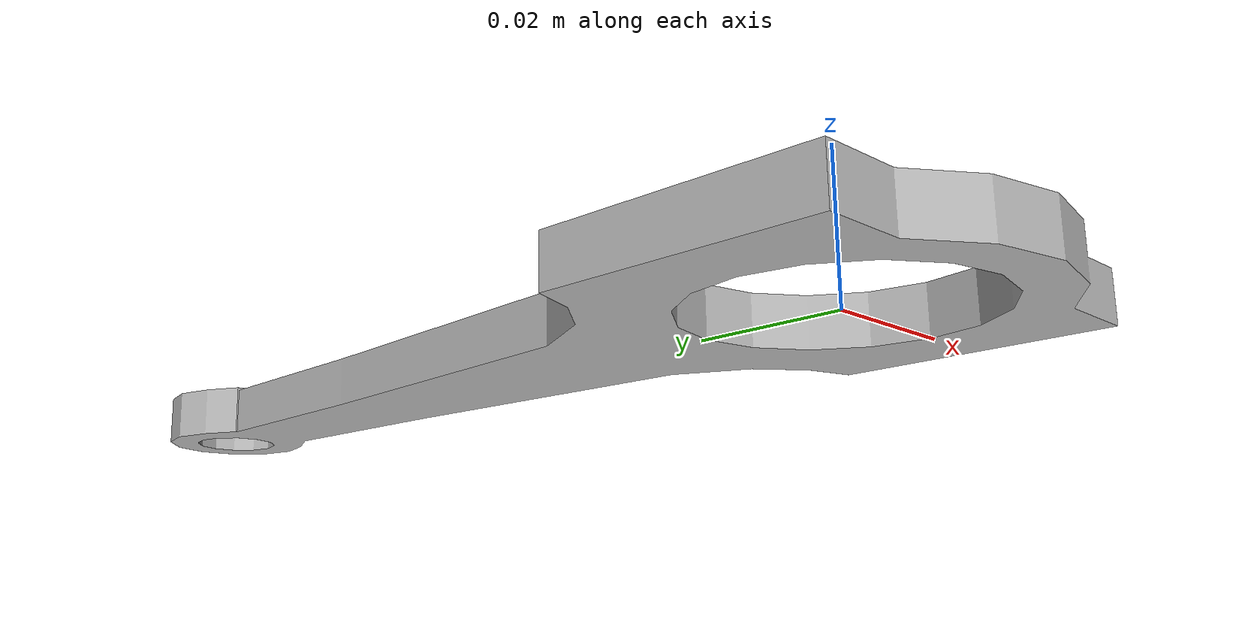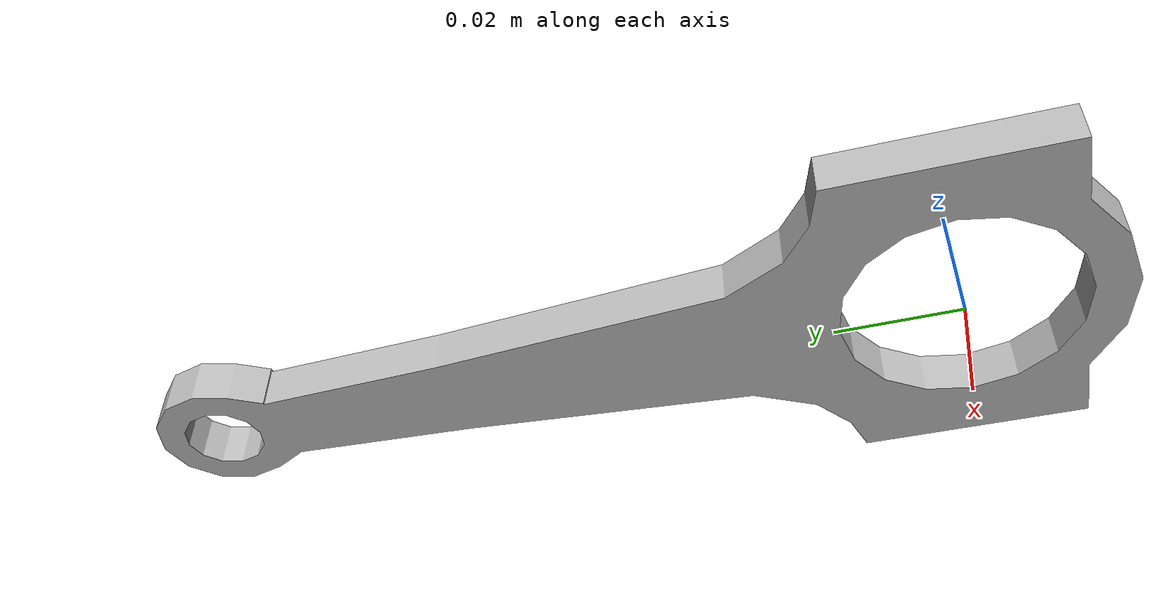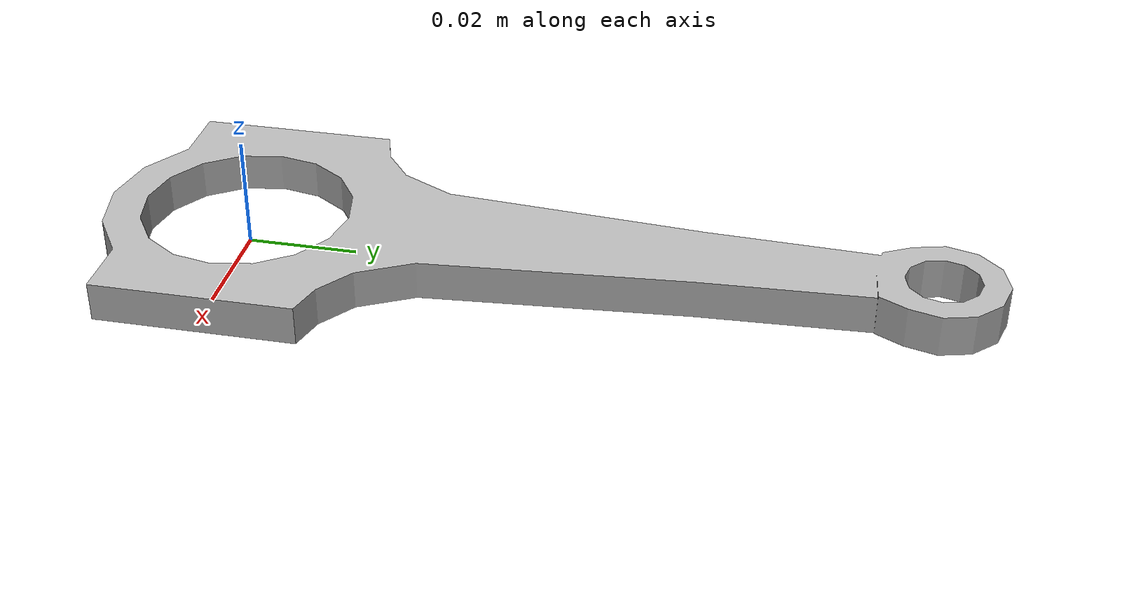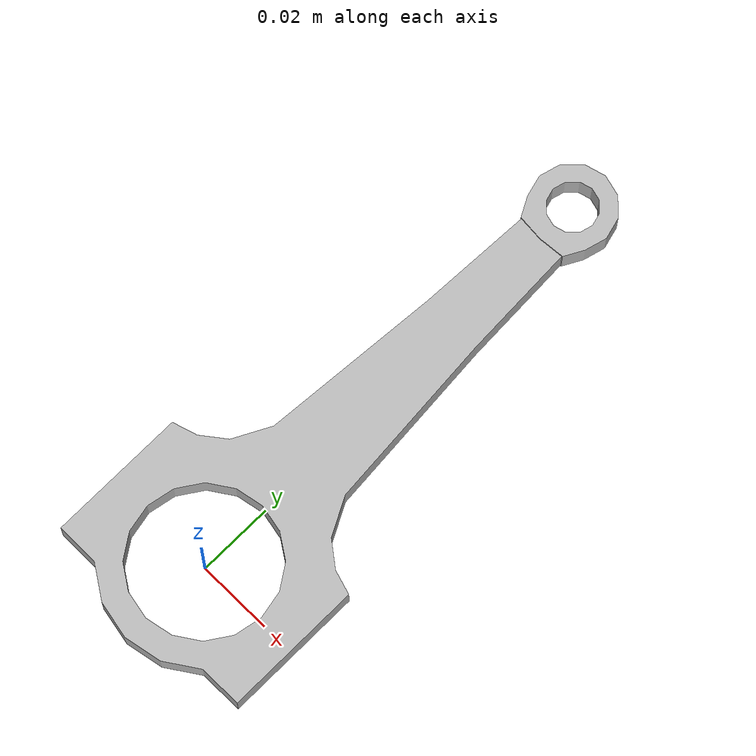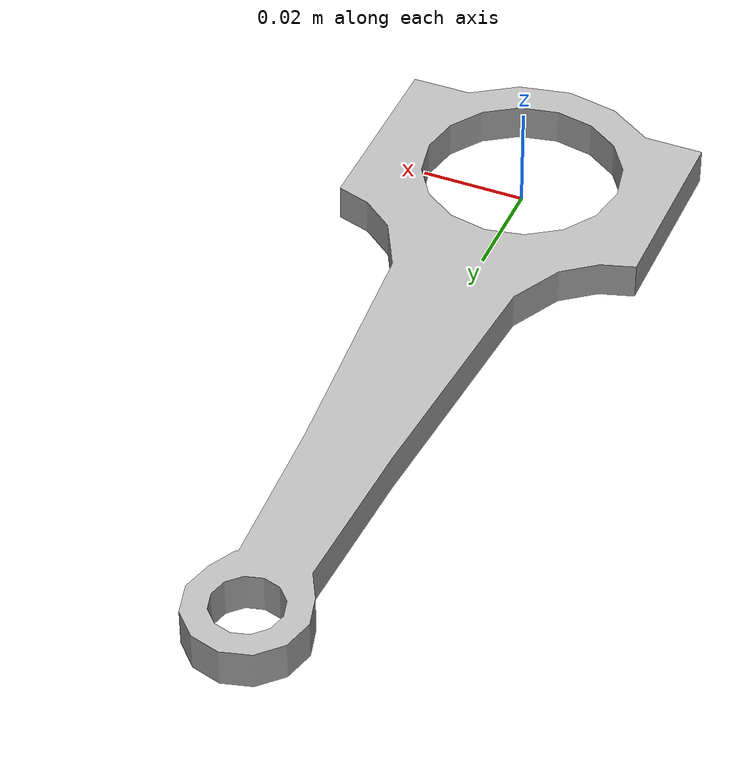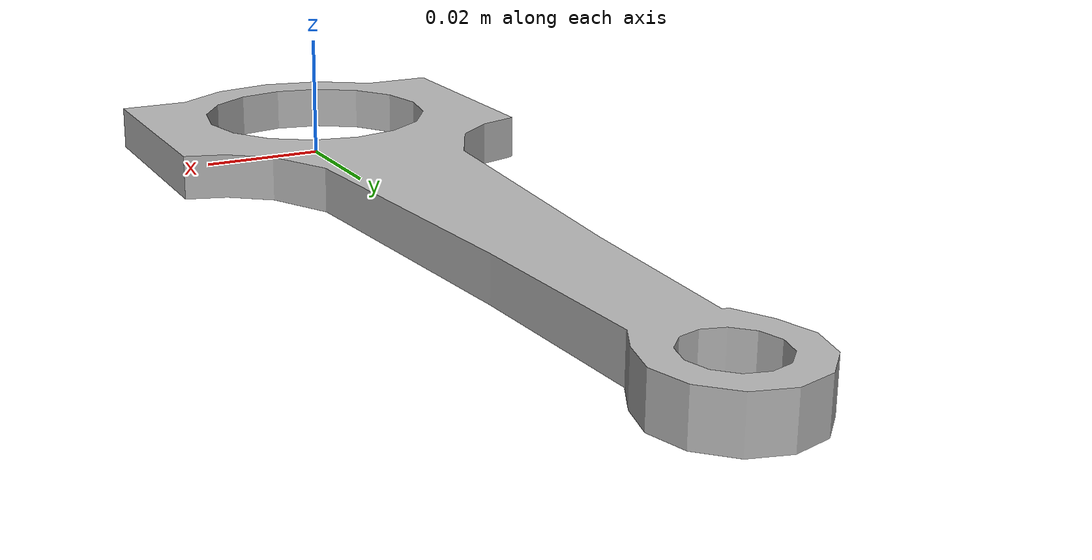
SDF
<?xml version="1.0" ?>
<sdf version="1.6">
  <model name="piston_rod_part">
    <link name="link">
      <inertial>
        <pose>0 0.05415 0.00355 0 0 0</pose>
        <mass>0.5</mass>
        <inertia>
          <ixx>0.00109584375</ixx>
          <ixy>0</ixy>
          <ixz>0</ixz>
          <iyy>0.00004238541</iyy>
          <iyz>0</iyz>
          <izz>0.00113354166</izz>
        </inertia>
      </inertial>

      <collision name='collision_1'>
        <pose frame=''>0 0 0.00375 0 0 0</pose>
        <geometry>
          <box>
            <size>0.059 0.052 0.0075</size>
          </box>
        </geometry>
        <surface>
          <contact>
            <ode>
              <max_vel>0.1</max_vel>
              <min_depth>0.001</min_depth>
            </ode>
          </contact>
        </surface>
      </collision>
      <collision name='collision_2'>
        <pose frame=''>0 0.08 0.00375 0 0 0</pose>
        <geometry>
          <box>
            <size>0.031 0.11 0.0075</size>
          </box>
        </geometry>
        <surface>
          <contact>
            <ode>
              <max_vel>0.1</max_vel>
              <min_depth>0.001</min_depth>
            </ode>
          </contact>
        </surface>
      </collision>

      <visual name="visual">
         <geometry>
           <mesh>
             <uri>model://piston_rod_part/meshes/piston_rod.dae</uri>
             <scale>0.25 0.25 0.25</scale>
           </mesh>
         </geometry>
        <material>
          <script>
            <uri>model://arm_part/materials/scripts</uri>
            <uri>model://arm_part/materials/textures</uri>
            <name>ArmPart/Diffuse</name>
          </script>
        </material>
       </visual>
    </link>
  </model>
</sdf>
